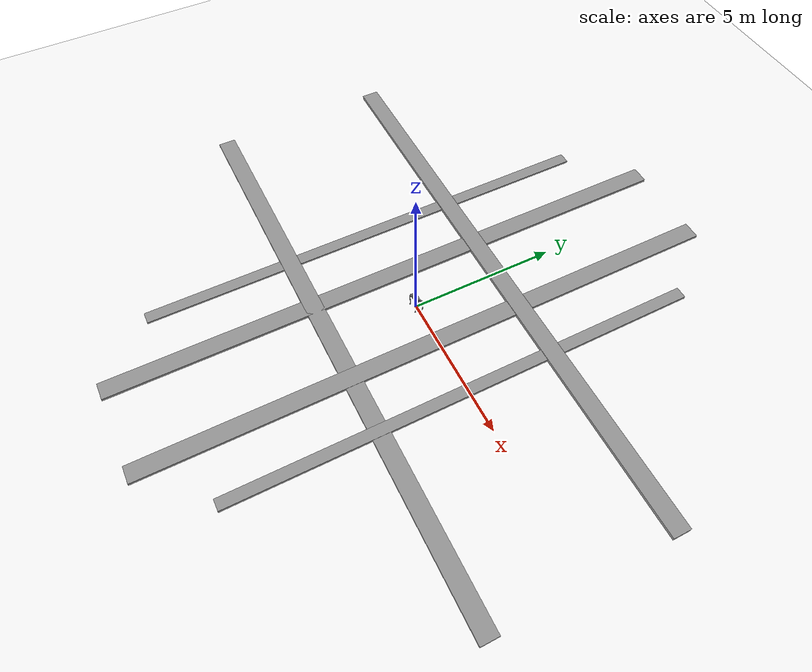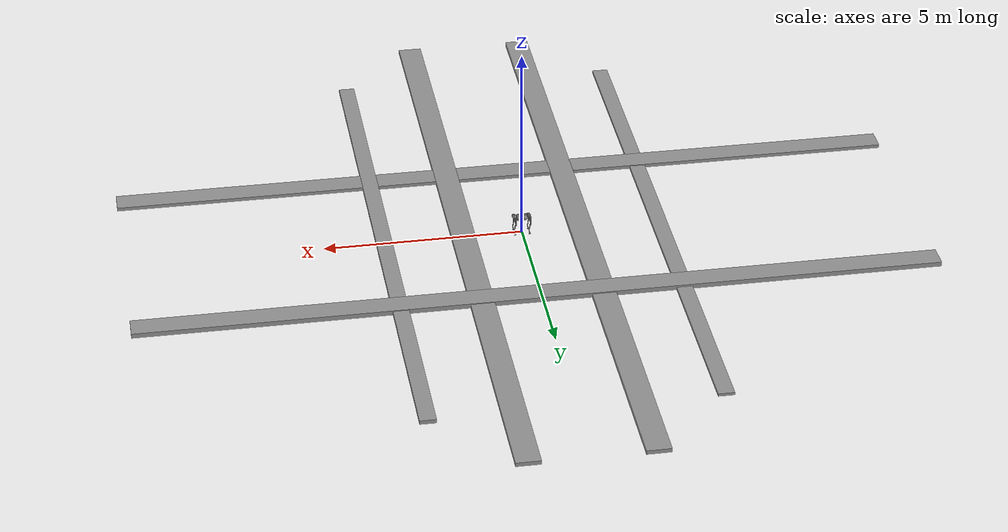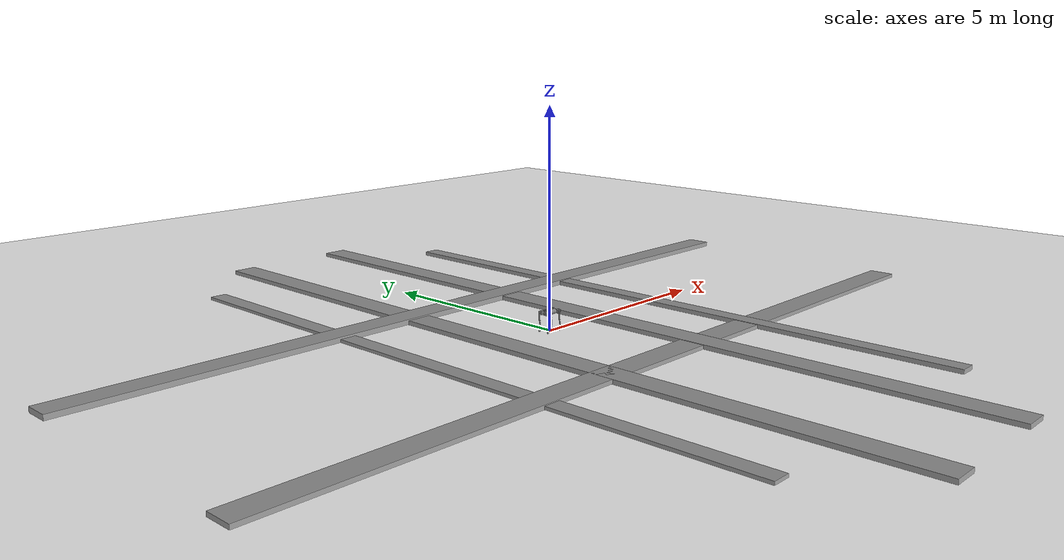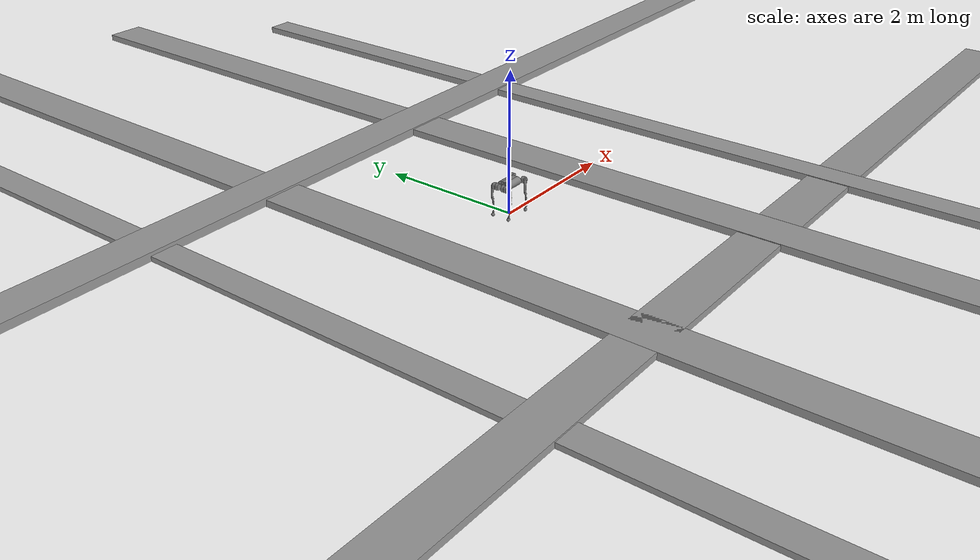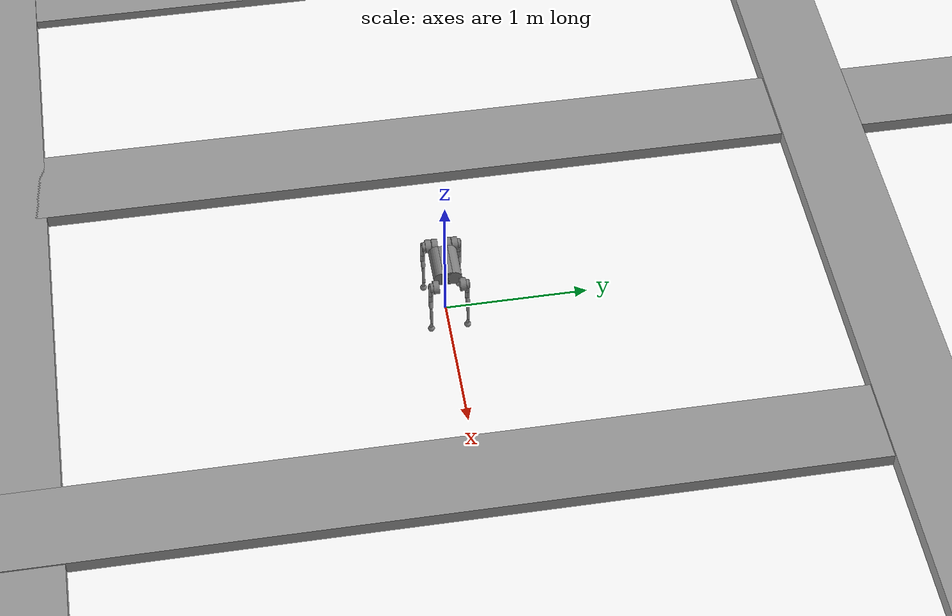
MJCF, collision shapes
<mujoco model="go1 feet only rough terrain scene">
  <include file="go1_mjx_feetonly.xml"/>

  <statistic center="0 0 0.1" extent="0.8" meansize="0.04"/>

  <visual>
    <rgba force="1 0 0 1"/>
    <global azimuth="120" elevation="-20"/>
    <map force="0.01"/>
    <scale forcewidth="0.3" contactwidth="0.5" contactheight="0.2"/>
    <quality shadowsize="8192"/>
  </visual>

  <asset>
    <texture type="skybox" builtin="gradient" rgb1="1 1 1" rgb2="1 1 1" width="800" height="800"/>
    <texture type="2d" name="groundplane" builtin="checker" mark="edge" rgb1="1 1 1" rgb2="1 1 1" markrgb="0 0 0"
      width="300" height="300"/>
    <material name="groundplane" texture="groundplane" texuniform="true" texrepeat="5 5" reflectance="0"/>
  </asset>

  <worldbody>
    <geom name="floor" size="0 0 0.01" type="plane" material="groundplane" contype="1" conaffinity="0" priority="1"
      friction="1.0 0.005 0.0001" condim="3"/>

    <!-- Long walls that force climbing - no way around -->
    <!-- Wall 1: Forward blocking path -->
    <body name="wall1" pos="1.5 0 0.05">
      <geom name="wall1" contype="1" conaffinity="0" friction="1.0 0.005 0.0001" rgba="0.6 0.6 0.6 1" type="box" size="0.3 10.0 0.05"/>
    </body>

    <!-- Wall 2: Backward blocking path -->
    <body name="wall2" pos="-1.5 0 0.04">
      <geom name="wall2" contype="1" conaffinity="0" friction="1.0 0.005 0.0001" rgba="0.6 0.6 0.6 1" type="box" size="0.3 10.0 0.05"/>
    </body>

    <!-- Wall 3: Left side blocking -->
    <body name="wall3" pos="0 3.0 0.06">
      <geom name="wall3" contype="1" conaffinity="0" friction="1.0 0.005 0.0001" rgba="0.6 0.6 0.6 1" type="box" size="10.0 0.3 0.06"/>
    </body>

    <!-- Wall 4: Right side blocking -->
    <body name="wall4" pos="0 -3.0 0.045">
      <geom name="wall4" contype="1" conaffinity="0" friction="1.0 0.005 0.0001" rgba="0.6 0.6 0.6 1" type="box" size="10.0 0.3 0.045"/>
    </body>

    <!-- Additional crossing walls for more climbing practice -->
    <body name="wall5" pos="3.5 0 0.05">
      <geom name="wall5" contype="1" conaffinity="0" friction="1.0 0.005 0.0001" rgba="0.6 0.6 0.6 1" type="box" size="0.2 8.0 0.05"/>
    </body>

    <body name="wall6" pos="-3.5 0 0.035">
      <geom name="wall6" contype="1" conaffinity="0" friction="1.0 0.005 0.0001" rgba="0.6 0.6 0.6 1" type="box" size="0.2 8.0 0.035"/>
    </body>
  </worldbody>

  <keyframe>
    <key name="home" qpos="
    0 0 0.278
    1 0 0 0
    0.1 0.9 -1.8
    -0.1 0.9 -1.8
    0.1 0.9 -1.8
    -0.1 0.9 -1.8"
      ctrl="0.1 0.9 -1.8 -0.1 0.9 -1.8 0.1 0.9 -1.8 -0.1 0.9 -1.8"/>
    <key name="home_higher" qpos="0 0 0.35 1 0 0 0 0 0.82 -1.63 0 0.82 -1.63 0 0.82 -1.63 0 0.82 -1.63"
      ctrl="0 0.82 -1.63 0 0.82 -1.63 0 0.82 -1.63 0 0.82 -1.63"/>
  </keyframe>
</mujoco>

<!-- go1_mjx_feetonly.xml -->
<mujoco model="go1 feet only">
  <compiler angle="radian" meshdir="../../../../../mujoco_menagerie/unitree_go1/assets" autolimits="true"/>

  <option iterations="1" ls_iterations="5" timestep="0.004" integrator="Euler">
    <flag eulerdamp="disable"/>
  </option>

  <default>
    <default class="go1">
      <!-- This globaly disables all collisions. -->
      <geom condim="1" contype="0" conaffinity="0"/>
      <joint axis="0 1 0" armature="0.005" damping="0.5"/>
      <position forcerange="-23.7 23.7" inheritrange="1" kp="35"/>
      <default class="abduction">
        <joint axis="1 0 0" range="-0.863 0.863" frictionloss="0.3"/>
      </default>
      <default class="hip">
        <joint range="-0.686 4.501" frictionloss="0.3"/>
      </default>
      <default class="knee">
        <joint range="-2.818 -0.888" frictionloss="1.0"/>
        <position forcerange="-35.55 35.55"/>
      </default>
      <default class="visual">
        <geom type="mesh" contype="0" conaffinity="0" group="2" material="dark"/>
      </default>
      <default class="rangefinder">
        <site type="capsule" size="0.005 0.01" rgba="0 1 0 0.3" group="5"/>
      </default>
      <default class="collision">
        <geom group="3" type="capsule"/>
        <default class="hip_left1">
          <geom size="0.046 0.02" pos="0 0.045 0" quat="1 1 0 0" type="cylinder"/>
        </default>
        <default class="hip_left2">
          <geom size="0.031 0.02" pos="0 0.065 0" quat="1 1 0 0" type="cylinder"/>
        </default>
        <default class="hip_left3">
          <geom size="0.046 0.02" quat="1 1 0 0" type="cylinder"/>
        </default>
        <default class="hip_right1">
          <geom size="0.046 0.02" pos="0 -0.045 0" quat="1 1 0 0" type="cylinder"/>
        </default>
        <default class="hip_right2">
          <geom size="0.031 0.02" pos="0 -0.065 0" quat="1 1 0 0" type="cylinder"/>
        </default>
        <default class="hip_right3">
          <geom size="0.046 0.02" quat="1 1 0 0" type="cylinder"/>
        </default>
        <default class="thigh1">
          <geom size="0.015" fromto="-0.02 0 0 -0.02 0 -0.16"/>
        </default>
        <default class="thigh2">
          <geom size="0.015" fromto="0 0 0 -0.02 0 -0.1"/>
        </default>
        <default class="thigh3">
          <geom size="0.015" fromto="-0.02 0 -0.16 0 0 -0.2"/>
        </default>
        <default class="calf1">
          <geom size="0.01" fromto="0 0 0 0.02 0 -0.13"/>
        </default>
        <default class="calf2">
          <geom size="0.01" fromto="0.02 0 -0.13 0 0 -0.2"/>
        </default>
        <default class="foot">
          <geom type="sphere" size="0.023" pos="0 0 -0.213" solimp="0.9 .95 0.023" contype="0" conaffinity="1"/>
        </default>
      </default>
    </default>
  </default>

  <asset>
    <material name="dark" rgba="0.2 0.2 0.2 1"/>
    <mesh class="go1" file="../../../../mujoco_menagerie/unitree_go1/assets/trunk.stl"/>
    <mesh class="go1" file="../../../../mujoco_menagerie/unitree_go1/assets/hip.stl"/>
    <mesh class="go1" file="../../../../mujoco_menagerie/unitree_go1/assets/thigh_mirror.stl"/>
    <mesh class="go1" file="../../../../mujoco_menagerie/unitree_go1/assets/calf.stl"/>
    <mesh class="go1" file="../../../../mujoco_menagerie/unitree_go1/assets/thigh.stl"/>
  </asset>

  <worldbody>
    <light name="spotlight" mode="targetbodycom" target="trunk" pos="3 0 4"/>
    <body name="trunk" pos="0 0 0.445" childclass="go1">
      <camera name="track" pos="0.846 -1.3 0.316" xyaxes="0.866 0.500 0.000 -0.171 0.296 0.940" mode="trackcom"/>
      <camera name="top" pos="-1 0 1" xyaxes="0 -1 0 0.7 0 0.7" mode="trackcom"/>
      <camera name="side" pos="0 -1 .3" xyaxes="1 0 0 0 1 2" mode="trackcom"/>
      <camera name="back" pos="-1 0 .3" xyaxes="0 -1 0 1 0 2" mode="trackcom"/>
      <site name="head" pos="0.3 0 0" rgba="1 0 0 1" size="0.02" group="5"/>
      <inertial pos="0.0223 0.002 -0.0005" quat="-0.00342088 0.705204 0.000106698 0.708996" mass="5.204"
        diaginertia="0.0716565 0.0630105 0.0168101"/>
      <freejoint/>
      <geom class="visual" mesh="trunk"/>
      <geom class="collision" size="0.125 0.04 0.057" type="box"/>
      <geom class="collision" quat="1 0 1 0" pos="0 -0.04 0" size="0.058 0.125" type="cylinder"/>
      <geom class="collision" quat="1 0 1 0" pos="0 +0.04 0" size="0.058 0.125" type="cylinder"/>
      <site name="imu" pos="-0.01592 -0.06659 -0.00617" group="5"/>

      <!-- Dense height scanner: 10x10 grid covering 1m x 1m area (±0.5m in each direction) -->
      <!-- ~0.111m spacing between sensors for high resolution terrain mapping -->
      <!-- Row 0: y = -0.5m -->

      <body name="FR_hip" pos="0.1881 -0.04675 0">
        <inertial pos="-0.0049166 0.00762615 -8.865e-05" quat="0.507341 0.514169 0.495027 0.482891" mass="0.68"
          diaginertia="0.000734064 0.000468438 0.000398719"/>
        <joint class="abduction" name="FR_hip_joint"/>
        <geom class="visual" mesh="hip" quat="1 0 0 0"/>
        <geom name="fr_hip" class="hip_right1"/>
        <geom class="hip_right2"/>
        <body name="FR_thigh" pos="0 -0.08 0">
          <inertial pos="-0.00304722 0.019315 -0.0305004" quat="0.65243 -0.0272313 0.0775126 0.753383" mass="1.009"
            diaginertia="0.00478717 0.00460903 0.000709268"/>
          <joint class="hip" name="FR_thigh_joint"/>
          <geom class="visual" mesh="thigh_mirror"/>
          <geom name="fr_thigh1" class="thigh1"/>
          <geom name="fr_thigh2" class="thigh2"/>
          <geom name="fr_thigh3" class="thigh3"/>
          <body name="FR_calf" pos="0 0 -0.213">
            <inertial pos="0.00429862 0.000976676 -0.146197" quat="0.691246 0.00357467 0.00511118 0.722592"
              mass="0.195862" diaginertia="0.00149767 0.00148468 3.58427e-05"/>
            <joint class="knee" name="FR_calf_joint"/>
            <geom class="visual" mesh="calf"/>
            <geom name="fr_calf1" class="calf1" contype="1" conaffinity="1"/>
            <geom name="fr_calf2" class="calf2"/>
            <geom name="FR" class="foot"/>
            <site name="FR" pos="0 0 -0.213" type="sphere" size="0.023" group="5"/>
          </body>
        </body>
      </body>
      <body name="FL_hip" pos="0.1881 0.04675 0">
        <inertial pos="-0.0049166 -0.00762615 -8.865e-05" quat="0.482891 0.495027 0.514169 0.507341" mass="0.68"
          diaginertia="0.000734064 0.000468438 0.000398719"/>
        <joint class="abduction" name="FL_hip_joint"/>
        <geom class="visual" mesh="hip"/>
        <geom name="fl_hip" class="hip_left1"/>
        <geom class="hip_left2"/>
        <body name="FL_thigh" pos="0 0.08 0">
          <inertial pos="-0.00304722 -0.019315 -0.0305004" quat="0.753383 0.0775126 -0.0272313 0.65243" mass="1.009"
            diaginertia="0.00478717 0.00460903 0.000709268"/>
          <joint class="hip" name="FL_thigh_joint"/>
          <geom class="visual" mesh="thigh"/>
          <geom name="fl_thigh1" class="thigh1"/>
          <geom name="fl_thigh2" class="thigh2"/>
          <geom name="fl_thigh3" class="thigh3"/>
          <body name="FL_calf" pos="0 0 -0.213">
            <inertial pos="0.00429862 0.000976676 -0.146197" quat="0.691246 0.00357467 0.00511118 0.722592"
              mass="0.195862" diaginertia="0.00149767 0.00148468 3.58427e-05"/>
            <joint class="knee" name="FL_calf_joint"/>
            <geom class="visual" mesh="calf"/>
            <geom name="fl_calf1" class="calf1" contype="1" conaffinity="1"/>
            <geom name="fl_calf2" class="calf2"/>
            <geom name="FL" class="foot"/>
            <site name="FL" pos="0 0 -0.213" type="sphere" size="0.023" group="5"/>
          </body>
        </body>
      </body>
      <body name="RR_hip" pos="-0.1881 -0.04675 0">
        <inertial pos="0.0049166 0.00762615 -8.865e-05" quat="0.495027 0.482891 0.507341 0.514169" mass="0.68"
          diaginertia="0.000734064 0.000468438 0.000398719"/>
        <joint class="abduction" name="RR_hip_joint"/>
        <geom class="visual" quat="0 0 0 -1" mesh="hip"/>
        <geom class="hip_right1"/>
        <geom class="hip_right2"/>
        <geom class="hip_right3"/>
        <body name="RR_thigh" pos="0 -0.08 0">
          <inertial pos="-0.00304722 0.019315 -0.0305004" quat="0.65243 -0.0272313 0.0775126 0.753383" mass="1.009"
            diaginertia="0.00478717 0.00460903 0.000709268"/>
          <joint class="hip" name="RR_thigh_joint"/>
          <geom class="visual" mesh="thigh_mirror"/>
          <geom class="thigh1"/>
          <geom class="thigh2"/>
          <geom class="thigh3"/>
          <body name="RR_calf" pos="0 0 -0.213">
            <inertial pos="0.00429862 0.000976676 -0.146197" quat="0.691246 0.00357467 0.00511118 0.722592"
              mass="0.195862" diaginertia="0.00149767 0.00148468 3.58427e-05"/>
            <joint class="knee" name="RR_calf_joint"/>
            <geom class="visual" mesh="calf"/>
            <geom name="rr_calf1" class="calf1" contype="1" conaffinity="1"/>
            <geom name="rr_calf2" class="calf2"/>
            <geom name="RR" class="foot"/>
            <site name="RR" pos="0 0 -0.213" type="sphere" size="0.023" group="5"/>
          </body>
        </body>
      </body>
      <body name="RL_hip" pos="-0.1881 0.04675 0">
        <inertial pos="0.0049166 -0.00762615 -8.865e-05" quat="0.514169 0.507341 0.482891 0.495027" mass="0.68"
          diaginertia="0.000734064 0.000468438 0.000398719"/>
        <joint class="abduction" name="RL_hip_joint"/>
        <geom class="visual" quat="0 0 1 0" mesh="hip"/>
        <geom class="hip_left1"/>
        <geom class="hip_left2"/>
        <geom class="hip_left3"/>
        <body name="RL_thigh" pos="0 0.08 0">
          <inertial pos="-0.00304722 -0.019315 -0.0305004" quat="0.753383 0.0775126 -0.0272313 0.65243" mass="1.009"
            diaginertia="0.00478717 0.00460903 0.000709268"/>
          <joint class="hip" name="RL_thigh_joint"/>
          <geom class="visual" mesh="thigh"/>
          <geom class="thigh1"/>
          <geom class="thigh2"/>
          <geom class="thigh3"/>
          <body name="RL_calf" pos="0 0 -0.213">
            <inertial pos="0.00429862 0.000976676 -0.146197" quat="0.691246 0.00357467 0.00511118 0.722592"
              mass="0.195862" diaginertia="0.00149767 0.00148468 3.58427e-05"/>
            <joint class="knee" name="RL_calf_joint"/>
            <geom class="visual" mesh="calf"/>
            <geom name="rl_calf1" class="calf1" contype="1" conaffinity="1"/>
            <geom name="rl_calf2" class="calf2"/>
            <geom name="RL" class="foot"/>
            <site name="RL" pos="0 0 -0.213" type="sphere" size="0.023" group="5"/>
          </body>
        </body>
      </body>
    </body>
  </worldbody>

  <actuator>
    <position class="abduction" name="FR_hip" joint="FR_hip_joint"/>
    <position class="hip" name="FR_thigh" joint="FR_thigh_joint"/>
    <position class="knee" name="FR_calf" joint="FR_calf_joint"/>
    <position class="abduction" name="FL_hip" joint="FL_hip_joint"/>
    <position class="hip" name="FL_thigh" joint="FL_thigh_joint"/>
    <position class="knee" name="FL_calf" joint="FL_calf_joint"/>
    <position class="abduction" name="RR_hip" joint="RR_hip_joint"/>
    <position class="hip" name="RR_thigh" joint="RR_thigh_joint"/>
    <position class="knee" name="RR_calf" joint="RR_calf_joint"/>
    <position class="abduction" name="RL_hip" joint="RL_hip_joint"/>
    <position class="hip" name="RL_thigh" joint="RL_thigh_joint"/>
    <position class="knee" name="RL_calf" joint="RL_calf_joint"/>
  </actuator>

  <sensor>
    <gyro site="imu" name="gyro"/>
    <velocimeter site="imu" name="local_linvel"/>
    <accelerometer site="imu" name="accelerometer"/>
    <framepos objtype="site" objname="imu" name="position"/>
    <framezaxis objtype="site" objname="imu" name="upvector"/>
    <framexaxis objtype="site" objname="imu" name="forwardvector"/>
    <framelinvel objtype="site" objname="imu" name="global_linvel"/>
    <frameangvel objtype="site" objname="imu" name="global_angvel"/>
    <framequat objtype="site" objname="imu" name="orientation"/>
    <framelinvel objtype="site" objname="FR" name="FR_global_linvel"/>
    <framelinvel objtype="site" objname="FL" name="FL_global_linvel"/>
    <framelinvel objtype="site" objname="RR" name="RR_global_linvel"/>
    <framelinvel objtype="site" objname="RL" name="RL_global_linvel"/>
    <framepos objtype="site" objname="FR" name="FR_pos" reftype="site" refname="imu"/>
    <framepos objtype="site" objname="FL" name="FL_pos" reftype="site" refname="imu"/>
    <framepos objtype="site" objname="RR" name="RR_pos" reftype="site" refname="imu"/>
    <framepos objtype="site" objname="RL" name="RL_pos" reftype="site" refname="imu"/>

  </sensor>

</mujoco>
